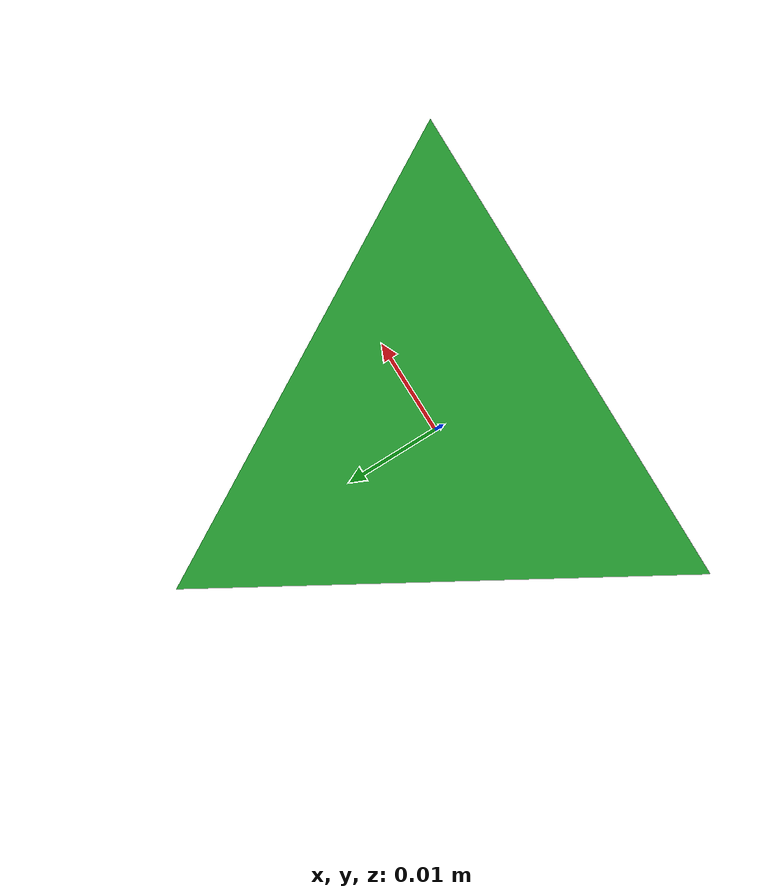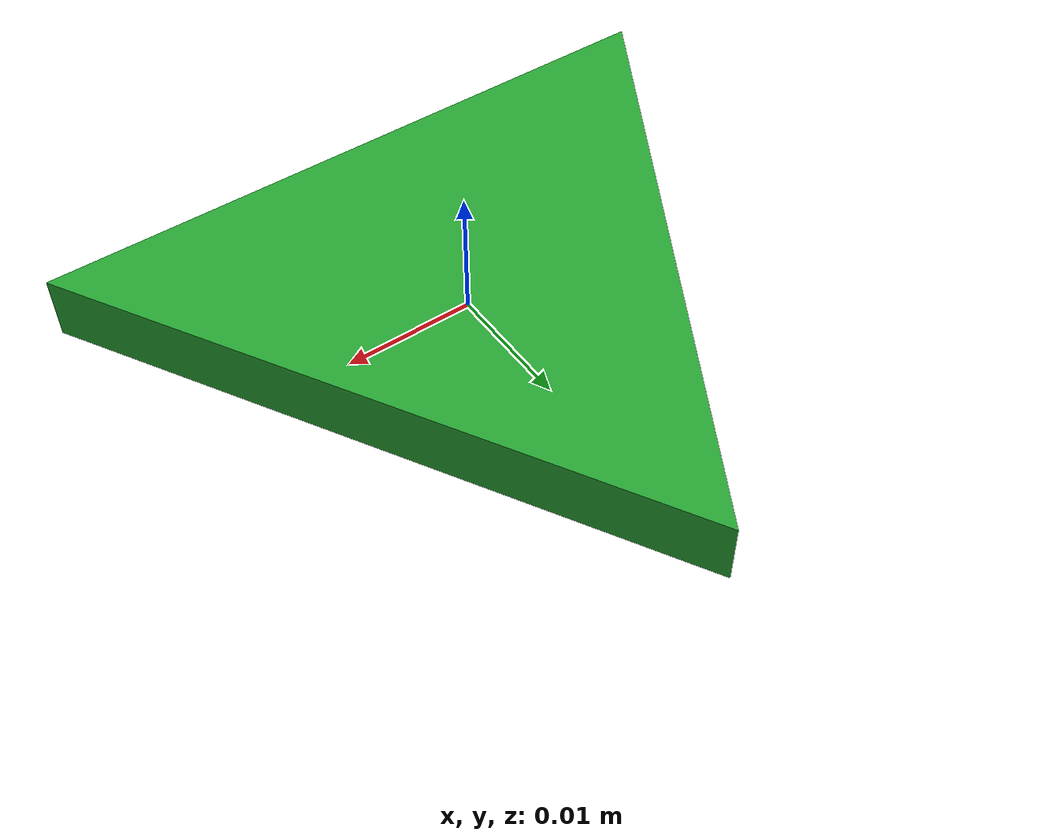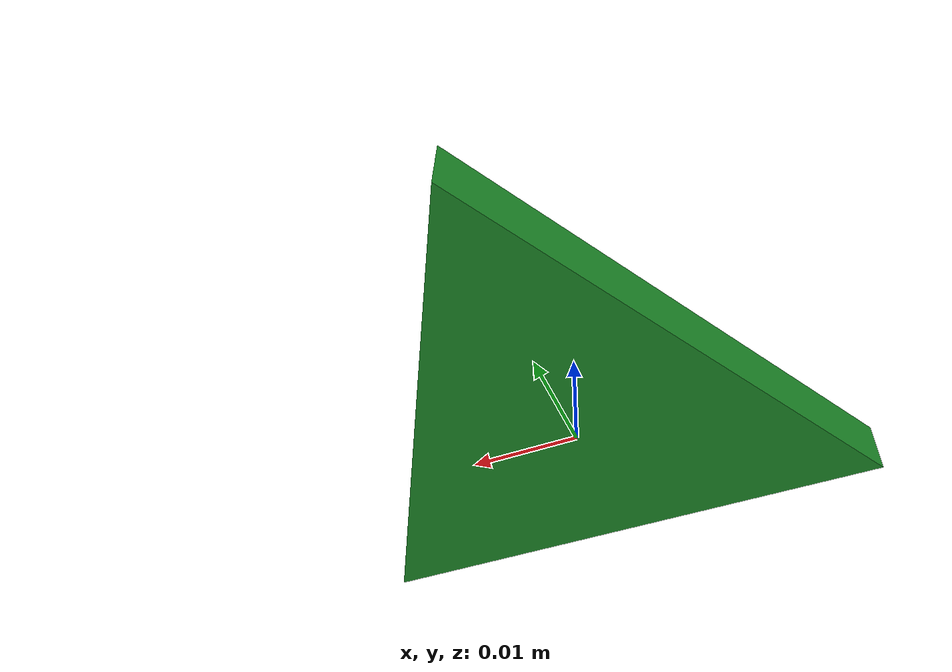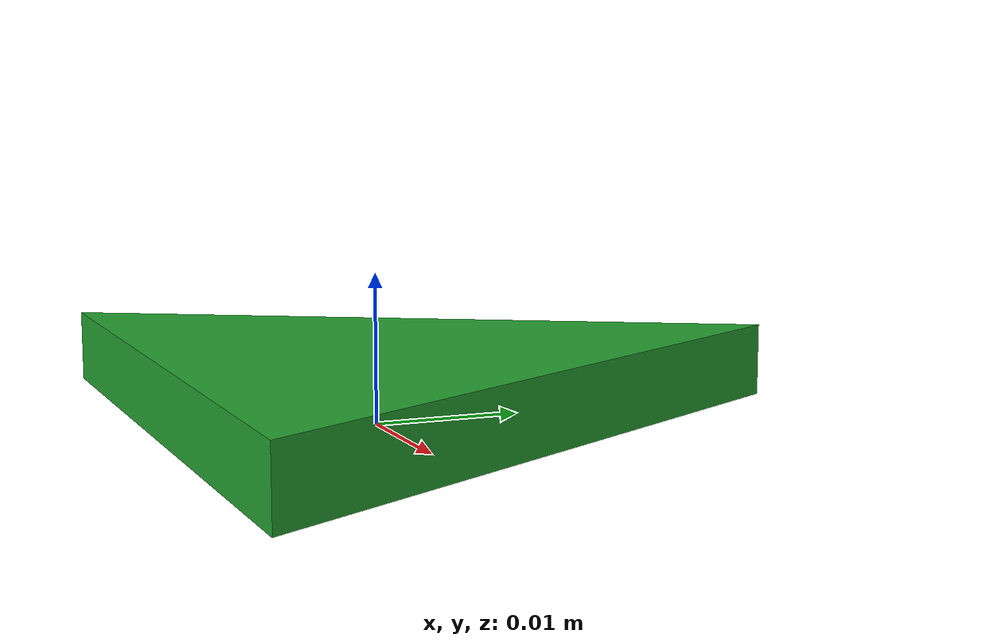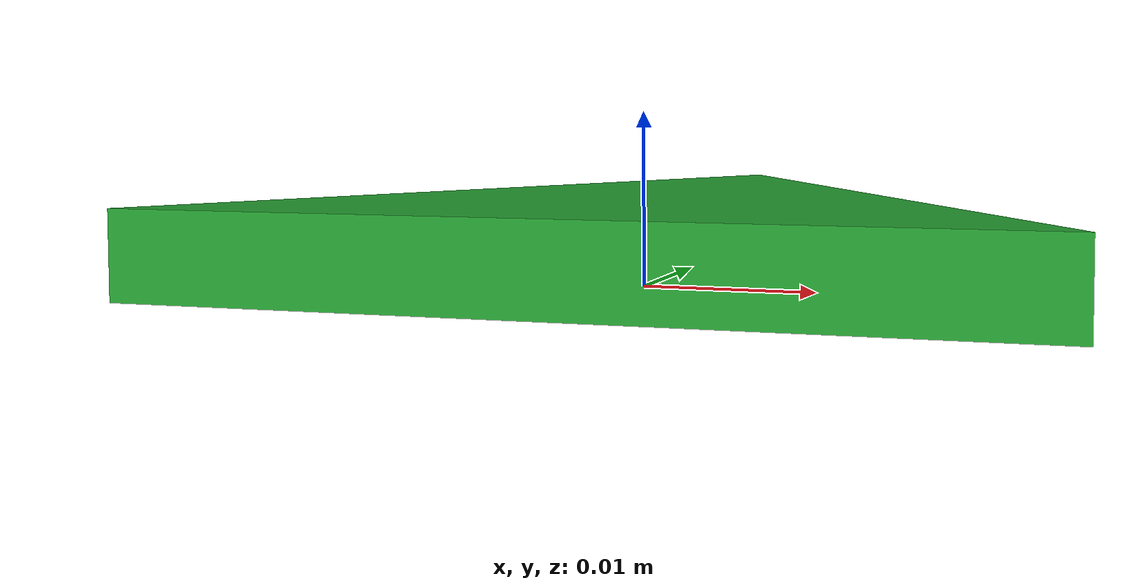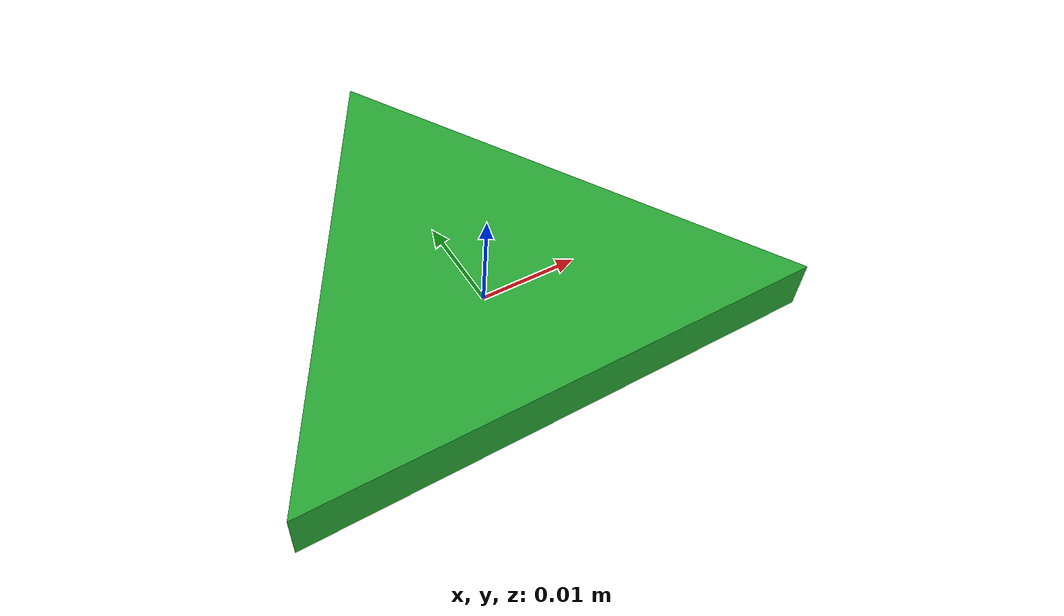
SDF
<?xml version='1.0'?>
<sdf version='1.5'>
  <model name='triangle_pill_green'>
  <static>false</static>
    <link name='link'>
     <collision name='collision'>
        <geometry>
          <mesh>
            <uri>model://triangle_pill_green/meshes/Triangle.stl</uri>
            <scale>0.001 0.001 0.001</scale>
          </mesh>
        </geometry>
        <surface>
          <friction>
            <ode>
              <mu>100</mu>
              <mu2>50</mu2>
            </ode>
          </friction>
        </surface>
      </collision>
      <visual name='visual'>
        <geometry>
          <mesh>
            <uri>model://triangle_pill_green/meshes/Triangle.stl</uri>
            <scale>0.001 0.001 0.001</scale>
          </mesh>
        </geometry>
        <material>
          <script>
            <uri>file://media/materials/scripts/gazebo.material</uri>
            <name>Gazebo/Green</name>
          </script>
        </material>
      </visual>
    </link>
  </model>
</sdf>
